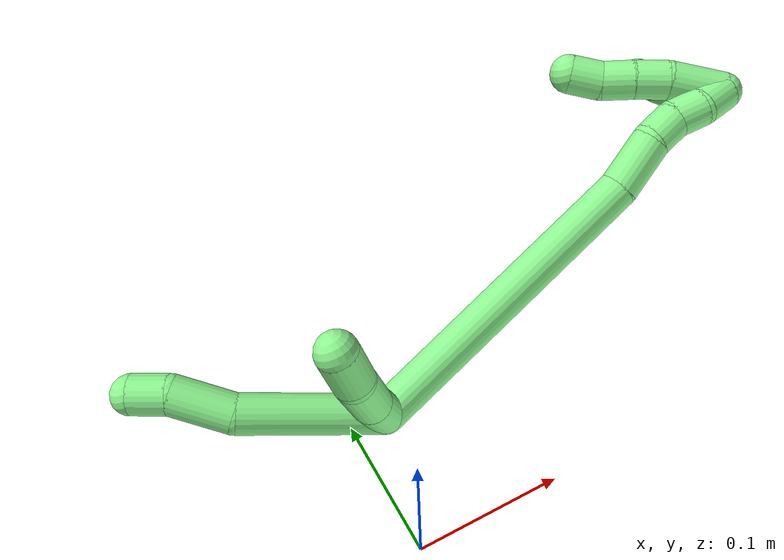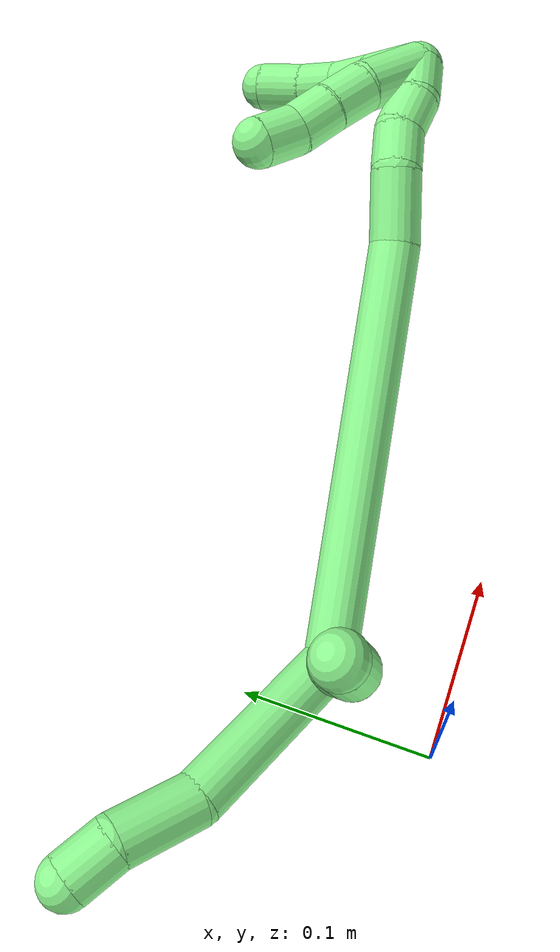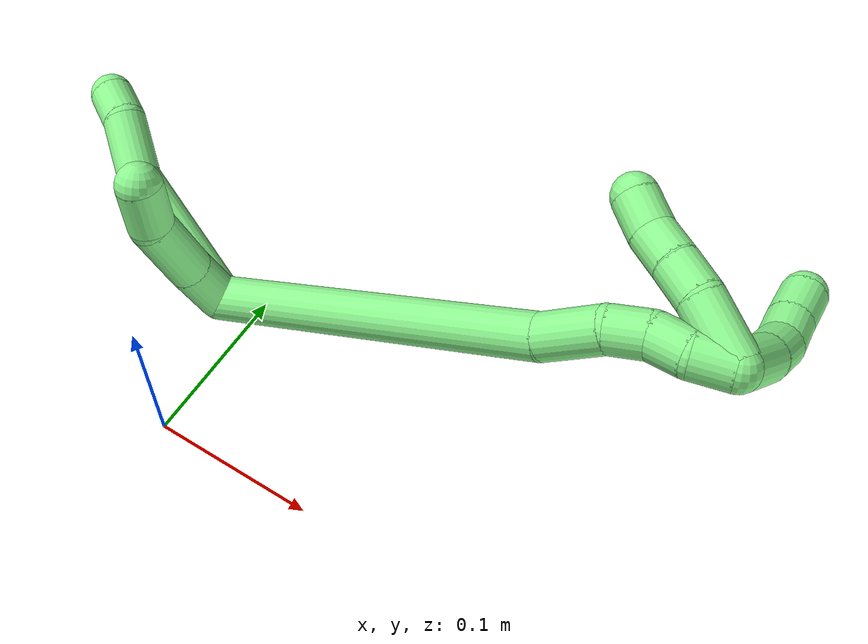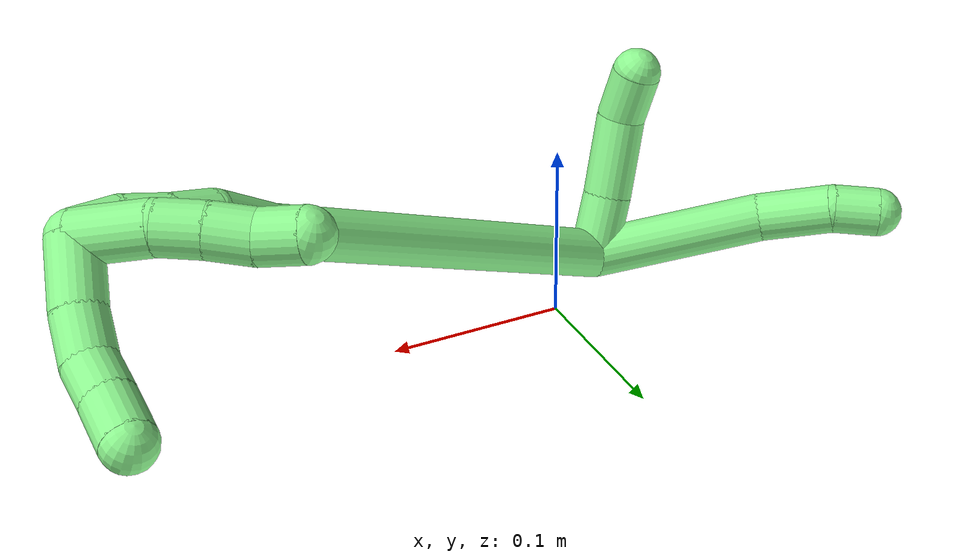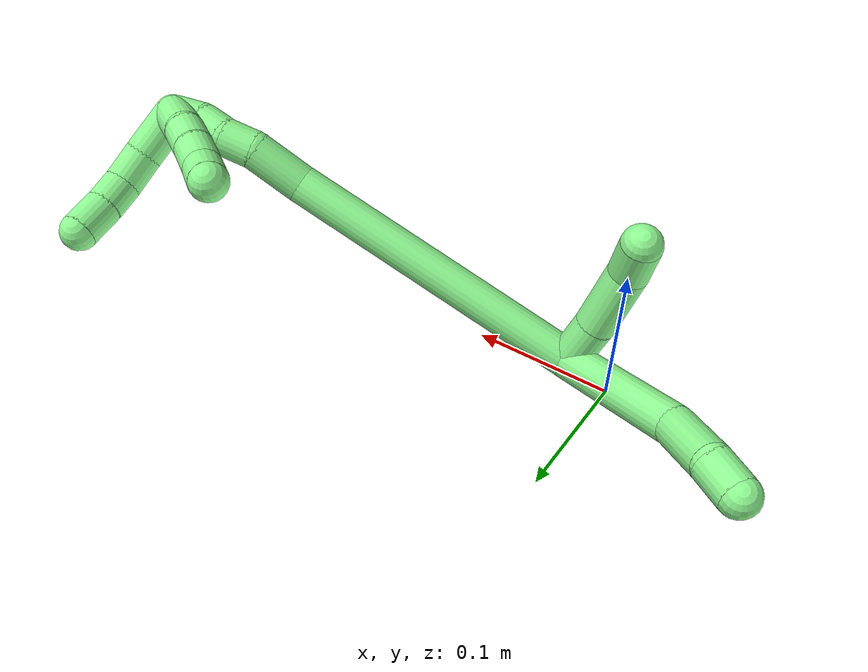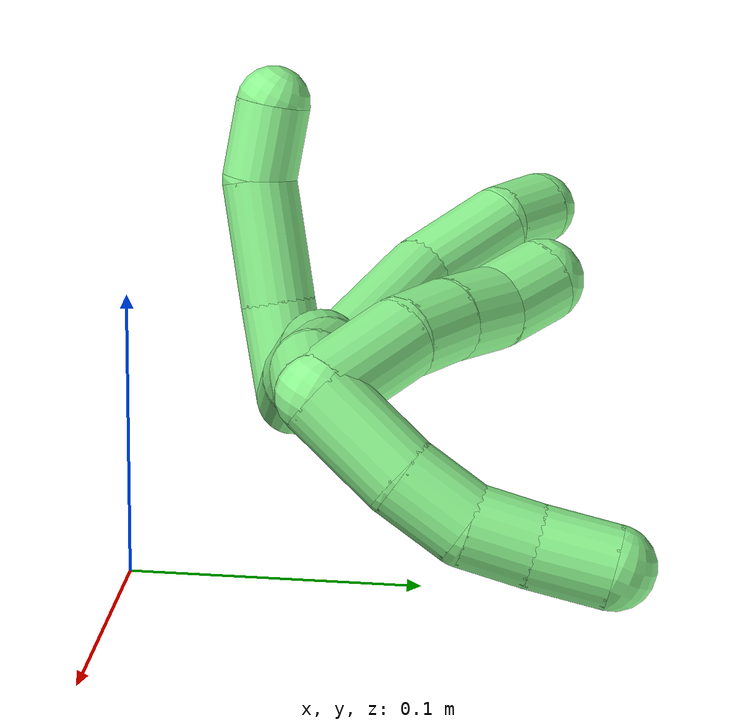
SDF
<sdf version="1.7">
 <world name="default">
  <model name="photoneo_s_sensor">
   <static>1</static>
   <pose>0 0 2 1.57079 1.57079 3.14159</pose>
   <link name="link">
    <inertial><mass>0.1</mass></inertial>
    <sensor name="sensor" type="depth">
     <update_rate>30</update_rate>
     <camera>
      <horizontal_fov>1.22</horizontal_fov>
      <image><width>1920</width><height>1200</height><format>B8G8R8</format></image>
      <clip><near>0.1</near><far>4</far></clip>
      <depth_camera><output>points</output></depth_camera>
     </camera>
     <plugin name="camera_plugin" filename="libgazebo_ros_depth_camera.so">
      <baseline>0.2</baseline>
      <alwaysOn>1</alwaysOn>
      <updateRate>0.0</updateRate>
      <cameraName>camera_ir</cameraName>
      <imageTopicName>/camera/color/image_raw</imageTopicName>
      <cameraInfoTopicName>/camera/color/camera_info</cameraInfoTopicName>
      <depthImageTopicName>/camera/depth/image_raw</depthImageTopicName>
      <depthImageCameraInfoTopicName>/camera/depth/camera_info</depthImageCameraInfoTopicName>
      <pointCloudTopicName>/camera/depth/points</pointCloudTopicName>
      <frameName>fr_optical</frameName>
      <pointCloudCutoff>0.1</pointCloudCutoff>
      <pointCloudCutoffMax>2.0</pointCloudCutoffMax>
      <distortionK1>0</distortionK1>
      <distortionK2>0</distortionK2>
      <distortionK3>0</distortionK3>
      <distortionT1>0</distortionT1>
      <distortionT2>0</distortionT2>
      <CxPrime>0</CxPrime>
      <Cx>0</Cx>
      <Cy>0</Cy>
      <focalLength>0</focalLength>
      <hackBaseline>0</hackBaseline>
     </plugin>
    </sensor>
   </link>
  </model>
  <model name="bin">
   <static>1</static>
   <link name="bottom">
    <collision name="collision-bottom">
     <pose>0 0 -0.01 0 -0 0</pose>
     <geometry><box><size>0.8 0.6 0.02</size></box></geometry>
     <surface>
      <friction><ode><mu>100</mu><mu2>100</mu2></ode></friction>
      <contact><collide_bitmask>65535</collide_bitmask></contact>
     </surface>
    </collision>
   </link>
   <link name="west_wall">
    <collision name="collision-west_wall">
     <pose>-0.41 0 0.1 0 -0 0</pose>
     <geometry><box><size>0.02 0.6 0.2</size></box></geometry>
     <surface>
      <friction><ode><mu>100</mu><mu2>100</mu2></ode></friction>
      <contact><collide_bitmask>65535</collide_bitmask></contact>
     </surface>
    </collision>
   </link>
   <link name="east_wall">
    <collision name="collision-east_wall">
     <pose>0.41 0 0.1 0 -0 0</pose>
     <geometry><box><size>0.02 0.6 0.2</size></box></geometry>
     <surface>
      <friction><ode><mu>100</mu><mu2>100</mu2></ode></friction>
      <contact><collide_bitmask>65535</collide_bitmask></contact>
     </surface>
    </collision>
   </link>
   <link name="south_wall">
    <collision name="collision-south_wall">
     <pose>0 -0.31 0.1 0 -0 0</pose>
     <geometry><box><size>0.8 0.02 0.2</size></box></geometry>
     <surface>
      <friction><ode><mu>100</mu><mu2>100</mu2></ode></friction>
      <contact><collide_bitmask>65535</collide_bitmask></contact>
     </surface>
    </collision>
   </link>
   <link name="north_wall">
    <collision name="collision-north_wall">
     <pose>0 0.31 0.1 0 -0 0</pose>
     <geometry><box><size>0.8 0.02 0.2</size></box></geometry>
     <surface>
      <friction><ode><mu>100</mu><mu2>100</mu2></ode></friction>
      <contact><collide_bitmask>65535</collide_bitmask></contact>
     </surface>
    </collision>
   </link>
  </model>
  <model name="13">
   <static>0</static>
   <link name="13">
    <collision name="collision-cylinder-e_1_2_8">
     <pose>-0.038676 0.002336 0.021483 -0.108311 -1.06128 0.063595</pose>
     <geometry><cylinder><radius>0.0125</radius><length>0.088608</length></cylinder></geometry>
     <surface>
      <friction><ode><mu>1.16</mu><mu2>1.16</mu2><slip1>0</slip1><slip2>0</slip2></ode></friction>
      <contact><ode><kp>1e+06</kp><kd>1</kd><max_vel>0</max_vel><min_depth>0.001</min_depth></ode></contact>
     </surface>
    </collision>
    <visual name="visual-cylinder-e_1_2_8">
     <pose>-0.038676 0.002336 0.021483 -0.108311 -1.06128 0.063595</pose>
     <geometry><cylinder><radius>0.0125</radius><length>0.088608</length></cylinder></geometry>
     <material><ambient>0.564706 0.984314 0.572549 1</ambient></material>
    </visual>
    <collision name="collision-cylinder-e_2_8_9">
     <pose>-0.091372 0.010298 0.054866 -0.441646 -0.816894 0.193699</pose>
     <geometry><cylinder><radius>0.0125</radius><length>0.038461</length></cylinder></geometry>
     <surface>
      <friction><ode><mu>1.16</mu><mu2>1.16</mu2><slip1>0</slip1><slip2>0</slip2></ode></friction>
      <contact><ode><kp>1e+06</kp><kd>1</kd><max_vel>0</max_vel><min_depth>0.001</min_depth></ode></contact>
     </surface>
    </collision>
    <visual name="visual-cylinder-e_2_8_9">
     <pose>-0.091372 0.010298 0.054866 -0.441646 -0.816894 0.193699</pose>
     <geometry><cylinder><radius>0.0125</radius><length>0.038461</length></cylinder></geometry>
     <material><ambient>0.564706 0.984314 0.572549 1</ambient></material>
    </visual>
    <collision name="collision-cylinder-e_3_9_6">
     <pose>-0.115671 0.019382 0.070484 -0.749031 -1.112 0.479114</pose>
     <geometry><cylinder><radius>0.0125</radius><length>0.022932</length></cylinder></geometry>
     <surface>
      <friction><ode><mu>1.16</mu><mu2>1.16</mu2><slip1>0</slip1><slip2>0</slip2></ode></friction>
      <contact><ode><kp>1e+06</kp><kd>1</kd><max_vel>0</max_vel><min_depth>0.001</min_depth></ode></contact>
     </surface>
    </collision>
    <visual name="visual-cylinder-e_3_9_6">
     <pose>-0.115671 0.019382 0.070484 -0.749031 -1.112 0.479114</pose>
     <geometry><cylinder><radius>0.0125</radius><length>0.022932</length></cylinder></geometry>
     <material><ambient>0.564706 0.984314 0.572549 1</ambient></material>
    </visual>
    <collision name="collision-cylinder-e_1_2_10">
     <pose>-0.001366 -0.009979 0.012325 0.680595 -0.085946 -0.030447</pose>
     <geometry><cylinder><radius>0.0125</radius><length>0.031833</length></cylinder></geometry>
     <surface>
      <friction><ode><mu>1.16</mu><mu2>1.16</mu2><slip1>0</slip1><slip2>0</slip2></ode></friction>
      <contact><ode><kp>1e+06</kp><kd>1</kd><max_vel>0</max_vel><min_depth>0.001</min_depth></ode></contact>
     </surface>
    </collision>
    <visual name="visual-cylinder-e_1_2_10">
     <pose>-0.001366 -0.009979 0.012325 0.680595 -0.085946 -0.030447</pose>
     <geometry><cylinder><radius>0.0125</radius><length>0.031833</length></cylinder></geometry>
     <material><ambient>0.564706 0.984314 0.572549 1</ambient></material>
    </visual>
    <collision name="collision-cylinder-e_2_10_11">
     <pose>-0.003039 -0.032532 0.041447 0.642618 -0.014626 -0.004868</pose>
     <geometry><cylinder><radius>0.0125</radius><length>0.04197</length></cylinder></geometry>
     <surface>
      <friction><ode><mu>1.16</mu><mu2>1.16</mu2><slip1>0</slip1><slip2>0</slip2></ode></friction>
      <contact><ode><kp>1e+06</kp><kd>1</kd><max_vel>0</max_vel><min_depth>0.001</min_depth></ode></contact>
     </surface>
    </collision>
    <visual name="visual-cylinder-e_2_10_11">
     <pose>-0.003039 -0.032532 0.041447 0.642618 -0.014626 -0.004868</pose>
     <geometry><cylinder><radius>0.0125</radius><length>0.04197</length></cylinder></geometry>
     <material><ambient>0.564706 0.984314 0.572549 1</ambient></material>
    </visual>
    <collision name="collision-cylinder-e_3_11_5">
     <pose>-0.003421 -0.048924 0.070774 0.295692 -0.005665 -0.000844</pose>
     <geometry><cylinder><radius>0.0125</radius><length>0.026197</length></cylinder></geometry>
     <surface>
      <friction><ode><mu>1.16</mu><mu2>1.16</mu2><slip1>0</slip1><slip2>0</slip2></ode></friction>
      <contact><ode><kp>1e+06</kp><kd>1</kd><max_vel>0</max_vel><min_depth>0.001</min_depth></ode></contact>
     </surface>
    </collision>
    <visual name="visual-cylinder-e_3_11_5">
     <pose>-0.003421 -0.048924 0.070774 0.295692 -0.005665 -0.000844</pose>
     <geometry><cylinder><radius>0.0125</radius><length>0.026197</length></cylinder></geometry>
     <material><ambient>0.564706 0.984314 0.572549 1</ambient></material>
    </visual>
    <collision name="collision-cylinder-e_1_2_12">
     <pose>0.095254 0.018276 0.025213 -0.62721 1.25483 -0.461957</pose>
     <geometry><cylinder><radius>0.0125</radius><length>0.20043</length></cylinder></geometry>
     <surface>
      <friction><ode><mu>1.16</mu><mu2>1.16</mu2><slip1>0</slip1><slip2>0</slip2></ode></friction>
      <contact><ode><kp>1e+06</kp><kd>1</kd><max_vel>0</max_vel><min_depth>0.001</min_depth></ode></contact>
     </surface>
    </collision>
    <visual name="visual-cylinder-e_1_2_12">
     <pose>0.095254 0.018276 0.025213 -0.62721 1.25483 -0.461957</pose>
     <geometry><cylinder><radius>0.0125</radius><length>0.20043</length></cylinder></geometry>
     <material><ambient>0.564706 0.984314 0.572549 1</ambient></material>
    </visual>
    <collision name="collision-cylinder-e_2_12_13">
     <pose>0.206172 0.040097 0.058676 -0.405911 1.05027 -0.237348</pose>
     <geometry><cylinder><radius>0.0125</radius><length>0.036109</length></cylinder></geometry>
     <surface>
      <friction><ode><mu>1.16</mu><mu2>1.16</mu2><slip1>0</slip1><slip2>0</slip2></ode></friction>
      <contact><ode><kp>1e+06</kp><kd>1</kd><max_vel>0</max_vel><min_depth>0.001</min_depth></ode></contact>
     </surface>
    </collision>
    <visual name="visual-cylinder-e_2_12_13">
     <pose>0.206172 0.040097 0.058676 -0.405911 1.05027 -0.237348</pose>
     <geometry><cylinder><radius>0.0125</radius><length>0.036109</length></cylinder></geometry>
     <material><ambient>0.564706 0.984314 0.572549 1</ambient></material>
    </visual>
    <collision name="collision-cylinder-e_3_13_14">
     <pose>0.231945 0.047079 0.068667 -1.1019 1.20673 -0.801007</pose>
     <geometry><cylinder><radius>0.0125</radius><length>0.021639</length></cylinder></geometry>
     <surface>
      <friction><ode><mu>1.16</mu><mu2>1.16</mu2><slip1>0</slip1><slip2>0</slip2></ode></friction>
      <contact><ode><kp>1e+06</kp><kd>1</kd><max_vel>0</max_vel><min_depth>0.001</min_depth></ode></contact>
     </surface>
    </collision>
    <visual name="visual-cylinder-e_3_13_14">
     <pose>0.231945 0.047079 0.068667 -1.1019 1.20673 -0.801007</pose>
     <geometry><cylinder><radius>0.0125</radius><length>0.021639</length></cylinder></geometry>
     <material><ambient>0.564706 0.984314 0.572549 1</ambient></material>
    </visual>
    <collision name="collision-cylinder-e_4_14_15">
     <pose>0.252125 0.051194 0.069934 -2.18059 1.4889 -2.11183</pose>
     <geometry><cylinder><radius>0.0125</radius><length>0.020206</length></cylinder></geometry>
     <surface>
      <friction><ode><mu>1.16</mu><mu2>1.16</mu2><slip1>0</slip1><slip2>0</slip2></ode></friction>
      <contact><ode><kp>1e+06</kp><kd>1</kd><max_vel>0</max_vel><min_depth>0.001</min_depth></ode></contact>
     </surface>
    </collision>
    <visual name="visual-cylinder-e_4_14_15">
     <pose>0.252125 0.051194 0.069934 -2.18059 1.4889 -2.11183</pose>
     <geometry><cylinder><radius>0.0125</radius><length>0.020206</length></cylinder></geometry>
     <material><ambient>0.564706 0.984314 0.572549 1</ambient></material>
    </visual>
    <collision name="collision-cylinder-e_5_15_1">
     <pose>0.272187 0.055976 0.069126 -1.65229 1.17988 -1.25642</pose>
     <geometry><cylinder><radius>0.0125</radius><length>0.021615</length></cylinder></geometry>
     <surface>
      <friction><ode><mu>1.16</mu><mu2>1.16</mu2><slip1>0</slip1><slip2>0</slip2></ode></friction>
      <contact><ode><kp>1e+06</kp><kd>1</kd><max_vel>0</max_vel><min_depth>0.001</min_depth></ode></contact>
     </surface>
    </collision>
    <visual name="visual-cylinder-e_5_15_1">
     <pose>0.272187 0.055976 0.069126 -1.65229 1.17988 -1.25642</pose>
     <geometry><cylinder><radius>0.0125</radius><length>0.021615</length></cylinder></geometry>
     <material><ambient>0.564706 0.984314 0.572549 1</ambient></material>
    </visual>
    <collision name="collision-cylinder-e_1_1_16">
     <pose>0.281379 0.075978 0.06426 -1.8484 -0.048343 0.064034</pose>
     <geometry><cylinder><radius>0.0125</radius><length>0.0331</length></cylinder></geometry>
     <surface>
      <friction><ode><mu>1.16</mu><mu2>1.16</mu2><slip1>0</slip1><slip2>0</slip2></ode></friction>
      <contact><ode><kp>1e+06</kp><kd>1</kd><max_vel>0</max_vel><min_depth>0.001</min_depth></ode></contact>
     </surface>
    </collision>
    <visual name="visual-cylinder-e_1_1_16">
     <pose>0.281379 0.075978 0.06426 -1.8484 -0.048343 0.064034</pose>
     <geometry><cylinder><radius>0.0125</radius><length>0.0331</length></cylinder></geometry>
     <material><ambient>0.564706 0.984314 0.572549 1</ambient></material>
    </visual>
    <collision name="collision-cylinder-e_2_16_17">
     <pose>0.278769 0.10319 0.057874 -1.73338 -0.15665 0.184295</pose>
     <geometry><cylinder><radius>0.0125</radius><length>0.023215</length></cylinder></geometry>
     <surface>
      <friction><ode><mu>1.16</mu><mu2>1.16</mu2><slip1>0</slip1><slip2>0</slip2></ode></friction>
      <contact><ode><kp>1e+06</kp><kd>1</kd><max_vel>0</max_vel><min_depth>0.001</min_depth></ode></contact>
     </surface>
    </collision>
    <visual name="visual-cylinder-e_2_16_17">
     <pose>0.278769 0.10319 0.057874 -1.73338 -0.15665 0.184295</pose>
     <geometry><cylinder><radius>0.0125</radius><length>0.023215</length></cylinder></geometry>
     <material><ambient>0.564706 0.984314 0.572549 1</ambient></material>
    </visual>
    <collision name="collision-cylinder-e_3_17_18">
     <pose>0.274178 0.124136 0.057544 -1.41372 -0.277661 0.237559</pose>
     <geometry><cylinder><radius>0.0125</radius><length>0.020281</length></cylinder></geometry>
     <surface>
      <friction><ode><mu>1.16</mu><mu2>1.16</mu2><slip1>0</slip1><slip2>0</slip2></ode></friction>
      <contact><ode><kp>1e+06</kp><kd>1</kd><max_vel>0</max_vel><min_depth>0.001</min_depth></ode></contact>
     </surface>
    </collision>
    <visual name="visual-cylinder-e_3_17_18">
     <pose>0.274178 0.124136 0.057544 -1.41372 -0.277661 0.237559</pose>
     <geometry><cylinder><radius>0.0125</radius><length>0.020281</length></cylinder></geometry>
     <material><ambient>0.564706 0.984314 0.572549 1</ambient></material>
    </visual>
    <collision name="collision-cylinder-e_4_18_4">
     <pose>0.26878 0.14491 0.061508 -1.35533 -0.225649 0.181875</pose>
     <geometry><cylinder><radius>0.0125</radius><length>0.023405</length></cylinder></geometry>
     <surface>
      <friction><ode><mu>1.16</mu><mu2>1.16</mu2><slip1>0</slip1><slip2>0</slip2></ode></friction>
      <contact><ode><kp>1e+06</kp><kd>1</kd><max_vel>0</max_vel><min_depth>0.001</min_depth></ode></contact>
     </surface>
    </collision>
    <visual name="visual-cylinder-e_4_18_4">
     <pose>0.26878 0.14491 0.061508 -1.35533 -0.225649 0.181875</pose>
     <geometry><cylinder><radius>0.0125</radius><length>0.023405</length></cylinder></geometry>
     <material><ambient>0.564706 0.984314 0.572549 1</ambient></material>
    </visual>
    <collision name="collision-cylinder-e_1_1_19">
     <pose>0.267522 0.064314 0.078635 -0.406128 -0.9395 0.208296</pose>
     <geometry><cylinder><radius>0.0125</radius><length>0.036314</length></cylinder></geometry>
     <surface>
      <friction><ode><mu>1.16</mu><mu2>1.16</mu2><slip1>0</slip1><slip2>0</slip2></ode></friction>
      <contact><ode><kp>1e+06</kp><kd>1</kd><max_vel>0</max_vel><min_depth>0.001</min_depth></ode></contact>
     </surface>
    </collision>
    <visual name="visual-cylinder-e_1_1_19">
     <pose>0.267522 0.064314 0.078635 -0.406128 -0.9395 0.208296</pose>
     <geometry><cylinder><radius>0.0125</radius><length>0.036314</length></cylinder></geometry>
     <material><ambient>0.564706 0.984314 0.572549 1</ambient></material>
    </visual>
    <collision name="collision-cylinder-e_2_19_20">
     <pose>0.243289 0.071692 0.092283 -0.690899 -1.09484 0.431897</pose>
     <geometry><cylinder><radius>0.0125</radius><length>0.021545</length></cylinder></geometry>
     <surface>
      <friction><ode><mu>1.16</mu><mu2>1.16</mu2><slip1>0</slip1><slip2>0</slip2></ode></friction>
      <contact><ode><kp>1e+06</kp><kd>1</kd><max_vel>0</max_vel><min_depth>0.001</min_depth></ode></contact>
     </surface>
    </collision>
    <visual name="visual-cylinder-e_2_19_20">
     <pose>0.243289 0.071692 0.092283 -0.690899 -1.09484 0.431897</pose>
     <geometry><cylinder><radius>0.0125</radius><length>0.021545</length></cylinder></geometry>
     <material><ambient>0.564706 0.984314 0.572549 1</ambient></material>
    </visual>
    <collision name="collision-cylinder-e_3_20_21">
     <pose>0.22427 0.078379 0.099137 -0.85988 -1.1112 0.554695</pose>
     <geometry><cylinder><radius>0.0125</radius><length>0.021073</length></cylinder></geometry>
     <surface>
      <friction><ode><mu>1.16</mu><mu2>1.16</mu2><slip1>0</slip1><slip2>0</slip2></ode></friction>
      <contact><ode><kp>1e+06</kp><kd>1</kd><max_vel>0</max_vel><min_depth>0.001</min_depth></ode></contact>
     </surface>
    </collision>
    <visual name="visual-cylinder-e_3_20_21">
     <pose>0.22427 0.078379 0.099137 -0.85988 -1.1112 0.554695</pose>
     <geometry><cylinder><radius>0.0125</radius><length>0.021073</length></cylinder></geometry>
     <material><ambient>0.564706 0.984314 0.572549 1</ambient></material>
    </visual>
    <collision name="collision-cylinder-e_4_21_3">
     <pose>0.206469 0.08515 0.107726 -0.527821 -0.916434 0.264993</pose>
     <geometry><cylinder><radius>0.0125</radius><length>0.021068</length></cylinder></geometry>
     <surface>
      <friction><ode><mu>1.16</mu><mu2>1.16</mu2><slip1>0</slip1><slip2>0</slip2></ode></friction>
      <contact><ode><kp>1e+06</kp><kd>1</kd><max_vel>0</max_vel><min_depth>0.001</min_depth></ode></contact>
     </surface>
    </collision>
    <visual name="visual-cylinder-e_4_21_3">
     <pose>0.206469 0.08515 0.107726 -0.527821 -0.916434 0.264993</pose>
     <geometry><cylinder><radius>0.0125</radius><length>0.021068</length></cylinder></geometry>
     <material><ambient>0.564706 0.984314 0.572549 1</ambient></material>
    </visual>
    <collision name="collision-sphere-3">
     <pose>0.198111 0.088379 0.113265 0 -0 0</pose>
     <geometry><sphere><radius>0.0125</radius></sphere></geometry>
     <surface>
      <friction><ode><mu>1.16</mu><mu2>1.16</mu2><slip1>0</slip1><slip2>0</slip2></ode></friction>
      <contact><ode><kp>1e+06</kp><kd>1</kd><max_vel>0</max_vel><min_depth>0.001</min_depth></ode></contact>
     </surface>
    </collision>
    <visual name="visual-sphere-3">
     <pose>0.198111 0.088379 0.113265 0 -0 0</pose>
     <geometry><sphere><radius>0.0125</radius></sphere></geometry>
     <material><ambient>0.564706 0.984314 0.572549 1</ambient></material>
    </visual>
    <collision name="collision-sphere-21">
     <pose>0.214827 0.081921 0.102187 0 -0 0</pose>
     <geometry><sphere><radius>0.0125</radius></sphere></geometry>
     <surface>
      <friction><ode><mu>1.16</mu><mu2>1.16</mu2><slip1>0</slip1><slip2>0</slip2></ode></friction>
      <contact><ode><kp>1e+06</kp><kd>1</kd><max_vel>0</max_vel><min_depth>0.001</min_depth></ode></contact>
     </surface>
    </collision>
    <visual name="visual-sphere-21">
     <pose>0.214827 0.081921 0.102187 0 -0 0</pose>
     <geometry><sphere><radius>0.0125</radius></sphere></geometry>
     <material><ambient>0.564706 0.984314 0.572549 1</ambient></material>
    </visual>
    <collision name="collision-sphere-20">
     <pose>0.233714 0.074838 0.096087 0 -0 0</pose>
     <geometry><sphere><radius>0.0125</radius></sphere></geometry>
     <surface>
      <friction><ode><mu>1.16</mu><mu2>1.16</mu2><slip1>0</slip1><slip2>0</slip2></ode></friction>
      <contact><ode><kp>1e+06</kp><kd>1</kd><max_vel>0</max_vel><min_depth>0.001</min_depth></ode></contact>
     </surface>
    </collision>
    <visual name="visual-sphere-20">
     <pose>0.233714 0.074838 0.096087 0 -0 0</pose>
     <geometry><sphere><radius>0.0125</radius></sphere></geometry>
     <material><ambient>0.564706 0.984314 0.572549 1</ambient></material>
    </visual>
    <collision name="collision-sphere-19">
     <pose>0.252864 0.068547 0.088479 0 -0 0</pose>
     <geometry><sphere><radius>0.0125</radius></sphere></geometry>
     <surface>
      <friction><ode><mu>1.16</mu><mu2>1.16</mu2><slip1>0</slip1><slip2>0</slip2></ode></friction>
      <contact><ode><kp>1e+06</kp><kd>1</kd><max_vel>0</max_vel><min_depth>0.001</min_depth></ode></contact>
     </surface>
    </collision>
    <visual name="visual-sphere-19">
     <pose>0.252864 0.068547 0.088479 0 -0 0</pose>
     <geometry><sphere><radius>0.0125</radius></sphere></geometry>
     <material><ambient>0.564706 0.984314 0.572549 1</ambient></material>
    </visual>
    <collision name="collision-sphere-11">
     <pose>-0.003346 -0.045107 0.058244 0 -0 0</pose>
     <geometry><sphere><radius>0.0125</radius></sphere></geometry>
     <surface>
      <friction><ode><mu>1.16</mu><mu2>1.16</mu2><slip1>0</slip1><slip2>0</slip2></ode></friction>
      <contact><ode><kp>1e+06</kp><kd>1</kd><max_vel>0</max_vel><min_depth>0.001</min_depth></ode></contact>
     </surface>
    </collision>
    <visual name="visual-sphere-11">
     <pose>-0.003346 -0.045107 0.058244 0 -0 0</pose>
     <geometry><sphere><radius>0.0125</radius></sphere></geometry>
     <material><ambient>0.564706 0.984314 0.572549 1</ambient></material>
    </visual>
    <collision name="collision-sphere-10">
     <pose>-0.002733 -0.019957 0.024649 0 -0 0</pose>
     <geometry><sphere><radius>0.0125</radius></sphere></geometry>
     <surface>
      <friction><ode><mu>1.16</mu><mu2>1.16</mu2><slip1>0</slip1><slip2>0</slip2></ode></friction>
      <contact><ode><kp>1e+06</kp><kd>1</kd><max_vel>0</max_vel><min_depth>0.001</min_depth></ode></contact>
     </surface>
    </collision>
    <visual name="visual-sphere-10">
     <pose>-0.002733 -0.019957 0.024649 0 -0 0</pose>
     <geometry><sphere><radius>0.0125</radius></sphere></geometry>
     <material><ambient>0.564706 0.984314 0.572549 1</ambient></material>
    </visual>
    <collision name="collision-sphere-6">
     <pose>-0.125952 0.02284 0.074203 0 -0 0</pose>
     <geometry><sphere><radius>0.0125</radius></sphere></geometry>
     <surface>
      <friction><ode><mu>1.16</mu><mu2>1.16</mu2><slip1>0</slip1><slip2>0</slip2></ode></friction>
      <contact><ode><kp>1e+06</kp><kd>1</kd><max_vel>0</max_vel><min_depth>0.001</min_depth></ode></contact>
     </surface>
    </collision>
    <visual name="visual-sphere-6">
     <pose>-0.125952 0.02284 0.074203 0 -0 0</pose>
     <geometry><sphere><radius>0.0125</radius></sphere></geometry>
     <material><ambient>0.564706 0.984314 0.572549 1</ambient></material>
    </visual>
    <collision name="collision-sphere-9">
     <pose>-0.105391 0.015924 0.066766 0 -0 0</pose>
     <geometry><sphere><radius>0.0125</radius></sphere></geometry>
     <surface>
      <friction><ode><mu>1.16</mu><mu2>1.16</mu2><slip1>0</slip1><slip2>0</slip2></ode></friction>
      <contact><ode><kp>1e+06</kp><kd>1</kd><max_vel>0</max_vel><min_depth>0.001</min_depth></ode></contact>
     </surface>
    </collision>
    <visual name="visual-sphere-9">
     <pose>-0.105391 0.015924 0.066766 0 -0 0</pose>
     <geometry><sphere><radius>0.0125</radius></sphere></geometry>
     <material><ambient>0.564706 0.984314 0.572549 1</ambient></material>
    </visual>
    <collision name="collision-sphere-2">
     <geometry><sphere><radius>0.0125</radius></sphere></geometry>
     <surface>
      <friction><ode><mu>1.16</mu><mu2>1.16</mu2><slip1>0</slip1><slip2>0</slip2></ode></friction>
      <contact><ode><kp>1e+06</kp><kd>1</kd><max_vel>0</max_vel><min_depth>0.001</min_depth></ode></contact>
     </surface>
    </collision>
    <visual name="visual-sphere-2">
     <geometry><sphere><radius>0.0125</radius></sphere></geometry>
     <material><ambient>0.564706 0.984314 0.572549 1</ambient></material>
    </visual>
    <collision name="collision-sphere-8">
     <pose>-0.077353 0.004672 0.042966 0 -0 0</pose>
     <geometry><sphere><radius>0.0125</radius></sphere></geometry>
     <surface>
      <friction><ode><mu>1.16</mu><mu2>1.16</mu2><slip1>0</slip1><slip2>0</slip2></ode></friction>
      <contact><ode><kp>1e+06</kp><kd>1</kd><max_vel>0</max_vel><min_depth>0.001</min_depth></ode></contact>
     </surface>
    </collision>
    <visual name="visual-sphere-8">
     <pose>-0.077353 0.004672 0.042966 0 -0 0</pose>
     <geometry><sphere><radius>0.0125</radius></sphere></geometry>
     <material><ambient>0.564706 0.984314 0.572549 1</ambient></material>
    </visual>
    <collision name="collision-sphere-5">
     <pose>-0.003495 -0.052741 0.083303 0 -0 0</pose>
     <geometry><sphere><radius>0.0125</radius></sphere></geometry>
     <surface>
      <friction><ode><mu>1.16</mu><mu2>1.16</mu2><slip1>0</slip1><slip2>0</slip2></ode></friction>
      <contact><ode><kp>1e+06</kp><kd>1</kd><max_vel>0</max_vel><min_depth>0.001</min_depth></ode></contact>
     </surface>
    </collision>
    <visual name="visual-sphere-5">
     <pose>-0.003495 -0.052741 0.083303 0 -0 0</pose>
     <geometry><sphere><radius>0.0125</radius></sphere></geometry>
     <material><ambient>0.564706 0.984314 0.572549 1</ambient></material>
    </visual>
    <collision name="collision-sphere-12">
     <pose>0.190508 0.036552 0.050427 0 -0 0</pose>
     <geometry><sphere><radius>0.0125</radius></sphere></geometry>
     <surface>
      <friction><ode><mu>1.16</mu><mu2>1.16</mu2><slip1>0</slip1><slip2>0</slip2></ode></friction>
      <contact><ode><kp>1e+06</kp><kd>1</kd><max_vel>0</max_vel><min_depth>0.001</min_depth></ode></contact>
     </surface>
    </collision>
    <visual name="visual-sphere-12">
     <pose>0.190508 0.036552 0.050427 0 -0 0</pose>
     <geometry><sphere><radius>0.0125</radius></sphere></geometry>
     <material><ambient>0.564706 0.984314 0.572549 1</ambient></material>
    </visual>
    <collision name="collision-sphere-13">
     <pose>0.221835 0.043643 0.066926 0 -0 0</pose>
     <geometry><sphere><radius>0.0125</radius></sphere></geometry>
     <surface>
      <friction><ode><mu>1.16</mu><mu2>1.16</mu2><slip1>0</slip1><slip2>0</slip2></ode></friction>
      <contact><ode><kp>1e+06</kp><kd>1</kd><max_vel>0</max_vel><min_depth>0.001</min_depth></ode></contact>
     </surface>
    </collision>
    <visual name="visual-sphere-13">
     <pose>0.221835 0.043643 0.066926 0 -0 0</pose>
     <geometry><sphere><radius>0.0125</radius></sphere></geometry>
     <material><ambient>0.564706 0.984314 0.572549 1</ambient></material>
    </visual>
    <collision name="collision-sphere-14">
     <pose>0.242056 0.050516 0.070408 0 -0 0</pose>
     <geometry><sphere><radius>0.0125</radius></sphere></geometry>
     <surface>
      <friction><ode><mu>1.16</mu><mu2>1.16</mu2><slip1>0</slip1><slip2>0</slip2></ode></friction>
      <contact><ode><kp>1e+06</kp><kd>1</kd><max_vel>0</max_vel><min_depth>0.001</min_depth></ode></contact>
     </surface>
    </collision>
    <visual name="visual-sphere-14">
     <pose>0.242056 0.050516 0.070408 0 -0 0</pose>
     <geometry><sphere><radius>0.0125</radius></sphere></geometry>
     <material><ambient>0.564706 0.984314 0.572549 1</ambient></material>
    </visual>
    <collision name="collision-sphere-15">
     <pose>0.262194 0.051871 0.069461 0 -0 0</pose>
     <geometry><sphere><radius>0.0125</radius></sphere></geometry>
     <surface>
      <friction><ode><mu>1.16</mu><mu2>1.16</mu2><slip1>0</slip1><slip2>0</slip2></ode></friction>
      <contact><ode><kp>1e+06</kp><kd>1</kd><max_vel>0</max_vel><min_depth>0.001</min_depth></ode></contact>
     </surface>
    </collision>
    <visual name="visual-sphere-15">
     <pose>0.262194 0.051871 0.069461 0 -0 0</pose>
     <geometry><sphere><radius>0.0125</radius></sphere></geometry>
     <material><ambient>0.564706 0.984314 0.572549 1</ambient></material>
    </visual>
    <collision name="collision-sphere-1">
     <pose>0.282179 0.06008 0.068791 0 -0 0</pose>
     <geometry><sphere><radius>0.0125</radius></sphere></geometry>
     <surface>
      <friction><ode><mu>1.16</mu><mu2>1.16</mu2><slip1>0</slip1><slip2>0</slip2></ode></friction>
      <contact><ode><kp>1e+06</kp><kd>1</kd><max_vel>0</max_vel><min_depth>0.001</min_depth></ode></contact>
     </surface>
    </collision>
    <visual name="visual-sphere-1">
     <pose>0.282179 0.06008 0.068791 0 -0 0</pose>
     <geometry><sphere><radius>0.0125</radius></sphere></geometry>
     <material><ambient>0.564706 0.984314 0.572549 1</ambient></material>
    </visual>
    <collision name="collision-sphere-18">
     <pose>0.271399 0.133768 0.059069 0 -0 0</pose>
     <geometry><sphere><radius>0.0125</radius></sphere></geometry>
     <surface>
      <friction><ode><mu>1.16</mu><mu2>1.16</mu2><slip1>0</slip1><slip2>0</slip2></ode></friction>
      <contact><ode><kp>1e+06</kp><kd>1</kd><max_vel>0</max_vel><min_depth>0.001</min_depth></ode></contact>
     </surface>
    </collision>
    <visual name="visual-sphere-18">
     <pose>0.271399 0.133768 0.059069 0 -0 0</pose>
     <geometry><sphere><radius>0.0125</radius></sphere></geometry>
     <material><ambient>0.564706 0.984314 0.572549 1</ambient></material>
    </visual>
    <collision name="collision-sphere-16">
     <pose>0.28058 0.091875 0.05973 0 -0 0</pose>
     <geometry><sphere><radius>0.0125</radius></sphere></geometry>
     <surface>
      <friction><ode><mu>1.16</mu><mu2>1.16</mu2><slip1>0</slip1><slip2>0</slip2></ode></friction>
      <contact><ode><kp>1e+06</kp><kd>1</kd><max_vel>0</max_vel><min_depth>0.001</min_depth></ode></contact>
     </surface>
    </collision>
    <visual name="visual-sphere-16">
     <pose>0.28058 0.091875 0.05973 0 -0 0</pose>
     <geometry><sphere><radius>0.0125</radius></sphere></geometry>
     <material><ambient>0.564706 0.984314 0.572549 1</ambient></material>
    </visual>
    <collision name="collision-sphere-17">
     <pose>0.276958 0.114504 0.056018 0 -0 0</pose>
     <geometry><sphere><radius>0.0125</radius></sphere></geometry>
     <surface>
      <friction><ode><mu>1.16</mu><mu2>1.16</mu2><slip1>0</slip1><slip2>0</slip2></ode></friction>
      <contact><ode><kp>1e+06</kp><kd>1</kd><max_vel>0</max_vel><min_depth>0.001</min_depth></ode></contact>
     </surface>
    </collision>
    <visual name="visual-sphere-17">
     <pose>0.276958 0.114504 0.056018 0 -0 0</pose>
     <geometry><sphere><radius>0.0125</radius></sphere></geometry>
     <material><ambient>0.564706 0.984314 0.572549 1</ambient></material>
    </visual>
    <collision name="collision-sphere-4">
     <pose>0.266162 0.156051 0.063946 0 -0 0</pose>
     <geometry><sphere><radius>0.0125</radius></sphere></geometry>
     <surface>
      <friction><ode><mu>1.16</mu><mu2>1.16</mu2><slip1>0</slip1><slip2>0</slip2></ode></friction>
      <contact><ode><kp>1e+06</kp><kd>1</kd><max_vel>0</max_vel><min_depth>0.001</min_depth></ode></contact>
     </surface>
    </collision>
    <visual name="visual-sphere-4">
     <pose>0.266162 0.156051 0.063946 0 -0 0</pose>
     <geometry><sphere><radius>0.0125</radius></sphere></geometry>
     <material><ambient>0.564706 0.984314 0.572549 1</ambient></material>
    </visual>
    <inertial>
     <pose>0.112464 0.032803 0.048615 0 -0 0</pose>
     <mass>0.75</mass>
     <inertia>
      <ixx>0.00017</ixx>
      <ixy>0</ixy>
      <ixz>0</ixz>
      <iyy>0.000682</iyy>
      <iyz>0</iyz>
      <izz>-0.000699</izz>
     </inertia>
    </inertial>
   </link>
   <pose>0.0084 0.057935 0.069486 -0.417269 -0.241472 -0.127706</pose>
  </model>
 </world>
</sdf>
